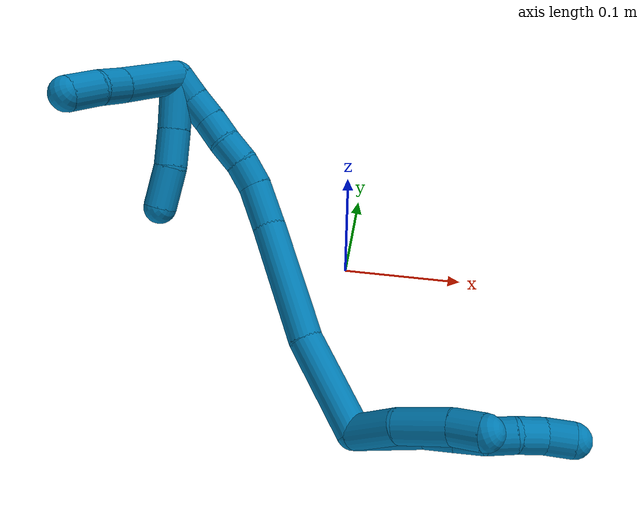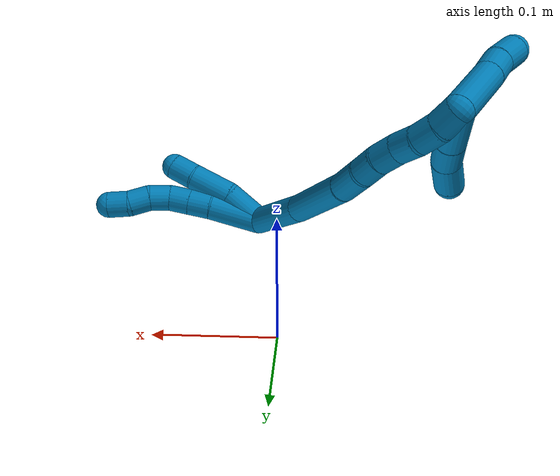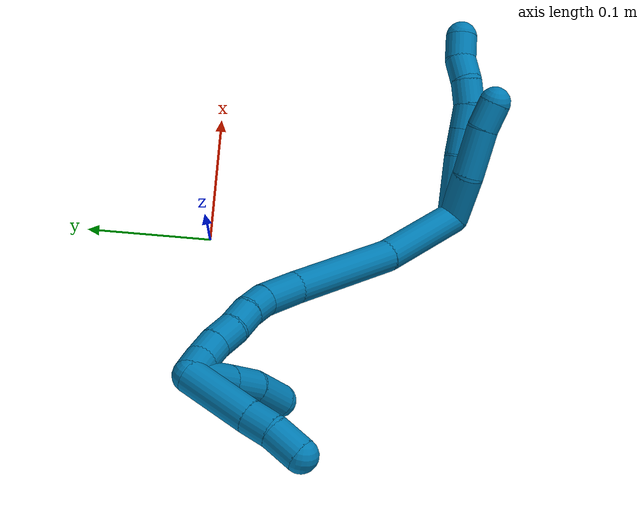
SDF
<sdf version="1.7">
 <world name="default">
  <model name="9">
   <static>0</static>
   <link name="9">
    <collision name="collision-cylinder-e_1_2_8">
     <pose>0.009639 0.001444 0.022558 -0.063905 0.403093 -0.013061</pose>
     <geometry><cylinder><radius>0.0125</radius><length>0.049147</length></cylinder></geometry>
     <surface>
      <friction><ode><mu>1.16</mu><mu2>1.16</mu2><slip1>0</slip1><slip2>0</slip2></ode></friction>
      <contact><ode><kp>1e+06</kp><kd>1</kd><max_vel>0</max_vel><min_depth>0.001</min_depth></ode></contact>
     </surface>
    </collision>
    <visual name="visual-cylinder-e_1_2_8">
     <pose>0.009639 0.001444 0.022558 -0.063905 0.403093 -0.013061</pose>
     <geometry><cylinder><radius>0.0125</radius><length>0.049147</length></cylinder></geometry>
     <material><ambient>0 0.490196 0.709804 1</ambient></material>
    </visual>
    <collision name="collision-cylinder-e_2_8_9">
     <pose>0.024267 0.002597 0.054194 0.031956 0.502179 0.008197</pose>
     <geometry><cylinder><radius>0.0125</radius><length>0.020724</length></cylinder></geometry>
     <surface>
      <friction><ode><mu>1.16</mu><mu2>1.16</mu2><slip1>0</slip1><slip2>0</slip2></ode></friction>
      <contact><ode><kp>1e+06</kp><kd>1</kd><max_vel>0</max_vel><min_depth>0.001</min_depth></ode></contact>
     </surface>
    </collision>
    <visual name="visual-cylinder-e_2_8_9">
     <pose>0.024267 0.002597 0.054194 0.031956 0.502179 0.008197</pose>
     <geometry><cylinder><radius>0.0125</radius><length>0.020724</length></cylinder></geometry>
     <material><ambient>0 0.490196 0.709804 1</ambient></material>
    </visual>
    <collision name="collision-cylinder-e_3_9_10">
     <pose>0.034044 0.002079 0.07205 0.025905 0.499361 0.006606</pose>
     <geometry><cylinder><radius>0.0125</radius><length>0.020005</length></cylinder></geometry>
     <surface>
      <friction><ode><mu>1.16</mu><mu2>1.16</mu2><slip1>0</slip1><slip2>0</slip2></ode></friction>
      <contact><ode><kp>1e+06</kp><kd>1</kd><max_vel>0</max_vel><min_depth>0.001</min_depth></ode></contact>
     </surface>
    </collision>
    <visual name="visual-cylinder-e_3_9_10">
     <pose>0.034044 0.002079 0.07205 0.025905 0.499361 0.006606</pose>
     <geometry><cylinder><radius>0.0125</radius><length>0.020005</length></cylinder></geometry>
     <material><ambient>0 0.490196 0.709804 1</ambient></material>
    </visual>
    <collision name="collision-cylinder-e_4_10_11">
     <pose>0.044795 0.004277 0.088561 -0.303929 0.634231 -0.100437</pose>
     <geometry><cylinder><radius>0.0125</radius><length>0.020121</length></cylinder></geometry>
     <surface>
      <friction><ode><mu>1.16</mu><mu2>1.16</mu2><slip1>0</slip1><slip2>0</slip2></ode></friction>
      <contact><ode><kp>1e+06</kp><kd>1</kd><max_vel>0</max_vel><min_depth>0.001</min_depth></ode></contact>
     </surface>
    </collision>
    <visual name="visual-cylinder-e_4_10_11">
     <pose>0.044795 0.004277 0.088561 -0.303929 0.634231 -0.100437</pose>
     <geometry><cylinder><radius>0.0125</radius><length>0.020121</length></cylinder></geometry>
     <material><ambient>0 0.490196 0.709804 1</ambient></material>
    </visual>
    <collision name="collision-cylinder-e_5_11_12">
     <pose>0.058427 0.009759 0.101935 -0.496466 0.874187 -0.235753</pose>
     <geometry><cylinder><radius>0.0125</radius><length>0.02</length></cylinder></geometry>
     <surface>
      <friction><ode><mu>1.16</mu><mu2>1.16</mu2><slip1>0</slip1><slip2>0</slip2></ode></friction>
      <contact><ode><kp>1e+06</kp><kd>1</kd><max_vel>0</max_vel><min_depth>0.001</min_depth></ode></contact>
     </surface>
    </collision>
    <visual name="visual-cylinder-e_5_11_12">
     <pose>0.058427 0.009759 0.101935 -0.496466 0.874187 -0.235753</pose>
     <geometry><cylinder><radius>0.0125</radius><length>0.02</length></cylinder></geometry>
     <material><ambient>0 0.490196 0.709804 1</ambient></material>
    </visual>
    <collision name="collision-cylinder-e_6_12_6">
     <pose>0.072924 0.013534 0.11485 -0.098515 0.751365 -0.038882</pose>
     <geometry><cylinder><radius>0.0125</radius><length>0.020002</length></cylinder></geometry>
     <surface>
      <friction><ode><mu>1.16</mu><mu2>1.16</mu2><slip1>0</slip1><slip2>0</slip2></ode></friction>
      <contact><ode><kp>1e+06</kp><kd>1</kd><max_vel>0</max_vel><min_depth>0.001</min_depth></ode></contact>
     </surface>
    </collision>
    <visual name="visual-cylinder-e_6_12_6">
     <pose>0.072924 0.013534 0.11485 -0.098515 0.751365 -0.038882</pose>
     <geometry><cylinder><radius>0.0125</radius><length>0.020002</length></cylinder></geometry>
     <material><ambient>0 0.490196 0.709804 1</ambient></material>
    </visual>
    <collision name="collision-cylinder-e_1_2_13">
     <pose>0.000162 -0.001787 0.019089 0.09335 0.00843 0.000394</pose>
     <geometry><cylinder><radius>0.0125</radius><length>0.038346</length></cylinder></geometry>
     <surface>
      <friction><ode><mu>1.16</mu><mu2>1.16</mu2><slip1>0</slip1><slip2>0</slip2></ode></friction>
      <contact><ode><kp>1e+06</kp><kd>1</kd><max_vel>0</max_vel><min_depth>0.001</min_depth></ode></contact>
     </surface>
    </collision>
    <visual name="visual-cylinder-e_1_2_13">
     <pose>0.000162 -0.001787 0.019089 0.09335 0.00843 0.000394</pose>
     <geometry><cylinder><radius>0.0125</radius><length>0.038346</length></cylinder></geometry>
     <material><ambient>0 0.490196 0.709804 1</ambient></material>
    </visual>
    <collision name="collision-cylinder-e_2_13_14">
     <pose>0.005028 -0.00543 0.057057 0.097962 0.243104 0.011976</pose>
     <geometry><cylinder><radius>0.0125</radius><length>0.039091</length></cylinder></geometry>
     <surface>
      <friction><ode><mu>1.16</mu><mu2>1.16</mu2><slip1>0</slip1><slip2>0</slip2></ode></friction>
      <contact><ode><kp>1e+06</kp><kd>1</kd><max_vel>0</max_vel><min_depth>0.001</min_depth></ode></contact>
     </surface>
    </collision>
    <visual name="visual-cylinder-e_2_13_14">
     <pose>0.005028 -0.00543 0.057057 0.097962 0.243104 0.011976</pose>
     <geometry><cylinder><radius>0.0125</radius><length>0.039091</length></cylinder></geometry>
     <material><ambient>0 0.490196 0.709804 1</ambient></material>
    </visual>
    <collision name="collision-cylinder-e_3_14_5">
     <pose>0.012694 -0.01005 0.086466 0.256758 0.265529 0.034476</pose>
     <geometry><cylinder><radius>0.0125</radius><length>0.022564</length></cylinder></geometry>
     <surface>
      <friction><ode><mu>1.16</mu><mu2>1.16</mu2><slip1>0</slip1><slip2>0</slip2></ode></friction>
      <contact><ode><kp>1e+06</kp><kd>1</kd><max_vel>0</max_vel><min_depth>0.001</min_depth></ode></contact>
     </surface>
    </collision>
    <visual name="visual-cylinder-e_3_14_5">
     <pose>0.012694 -0.01005 0.086466 0.256758 0.265529 0.034476</pose>
     <geometry><cylinder><radius>0.0125</radius><length>0.022564</length></cylinder></geometry>
     <material><ambient>0 0.490196 0.709804 1</ambient></material>
    </visual>
    <collision name="collision-cylinder-e_1_2_15">
     <pose>-0.024384 0.026046 -0.009161 -1.90902 -0.723429 0.981215</pose>
     <geometry><cylinder><radius>0.0125</radius><length>0.073671</length></cylinder></geometry>
     <surface>
      <friction><ode><mu>1.16</mu><mu2>1.16</mu2><slip1>0</slip1><slip2>0</slip2></ode></friction>
      <contact><ode><kp>1e+06</kp><kd>1</kd><max_vel>0</max_vel><min_depth>0.001</min_depth></ode></contact>
     </surface>
    </collision>
    <visual name="visual-cylinder-e_1_2_15">
     <pose>-0.024384 0.026046 -0.009161 -1.90902 -0.723429 0.981215</pose>
     <geometry><cylinder><radius>0.0125</radius><length>0.073671</length></cylinder></geometry>
     <material><ambient>0 0.490196 0.709804 1</ambient></material>
    </visual>
    <collision name="collision-cylinder-e_2_15_16">
     <pose>-0.076321 0.087482 -0.023586 -1.71845 -0.65622 0.752017</pose>
     <geometry><cylinder><radius>0.0125</radius><length>0.09032</length></cylinder></geometry>
     <surface>
      <friction><ode><mu>1.16</mu><mu2>1.16</mu2><slip1>0</slip1><slip2>0</slip2></ode></friction>
      <contact><ode><kp>1e+06</kp><kd>1</kd><max_vel>0</max_vel><min_depth>0.001</min_depth></ode></contact>
     </surface>
    </collision>
    <visual name="visual-cylinder-e_2_15_16">
     <pose>-0.076321 0.087482 -0.023586 -1.71845 -0.65622 0.752017</pose>
     <geometry><cylinder><radius>0.0125</radius><length>0.09032</length></cylinder></geometry>
     <material><ambient>0 0.490196 0.709804 1</ambient></material>
    </visual>
    <collision name="collision-cylinder-e_3_16_17">
     <pose>-0.11571 0.134725 -0.029678 -1.64054 -0.783541 0.83402</pose>
     <geometry><cylinder><radius>0.0125</radius><length>0.03354</length></cylinder></geometry>
     <surface>
      <friction><ode><mu>1.16</mu><mu2>1.16</mu2><slip1>0</slip1><slip2>0</slip2></ode></friction>
      <contact><ode><kp>1e+06</kp><kd>1</kd><max_vel>0</max_vel><min_depth>0.001</min_depth></ode></contact>
     </surface>
    </collision>
    <visual name="visual-cylinder-e_3_16_17">
     <pose>-0.11571 0.134725 -0.029678 -1.64054 -0.783541 0.83402</pose>
     <geometry><cylinder><radius>0.0125</radius><length>0.03354</length></cylinder></geometry>
     <material><ambient>0 0.490196 0.709804 1</ambient></material>
    </visual>
    <collision name="collision-cylinder-e_4_17_18">
     <pose>-0.136288 0.151974 -0.031399 -1.73471 -1.01152 1.15685</pose>
     <geometry><cylinder><radius>0.0125</radius><length>0.020626</length></cylinder></geometry>
     <surface>
      <friction><ode><mu>1.16</mu><mu2>1.16</mu2><slip1>0</slip1><slip2>0</slip2></ode></friction>
      <contact><ode><kp>1e+06</kp><kd>1</kd><max_vel>0</max_vel><min_depth>0.001</min_depth></ode></contact>
     </surface>
    </collision>
    <visual name="visual-cylinder-e_4_17_18">
     <pose>-0.136288 0.151974 -0.031399 -1.73471 -1.01152 1.15685</pose>
     <geometry><cylinder><radius>0.0125</radius><length>0.020626</length></cylinder></geometry>
     <material><ambient>0 0.490196 0.709804 1</ambient></material>
    </visual>
    <collision name="collision-cylinder-e_5_18_19">
     <pose>-0.15389 0.161848 -0.034702 -2.06483 -1.05 1.54018</pose>
     <geometry><cylinder><radius>0.0125</radius><length>0.020429</length></cylinder></geometry>
     <surface>
      <friction><ode><mu>1.16</mu><mu2>1.16</mu2><slip1>0</slip1><slip2>0</slip2></ode></friction>
      <contact><ode><kp>1e+06</kp><kd>1</kd><max_vel>0</max_vel><min_depth>0.001</min_depth></ode></contact>
     </surface>
    </collision>
    <visual name="visual-cylinder-e_5_18_19">
     <pose>-0.15389 0.161848 -0.034702 -2.06483 -1.05 1.54018</pose>
     <geometry><cylinder><radius>0.0125</radius><length>0.020429</length></cylinder></geometry>
     <material><ambient>0 0.490196 0.709804 1</ambient></material>
    </visual>
    <collision name="collision-cylinder-e_6_19_20">
     <pose>-0.17067 0.172348 -0.039964 -2.01283 -0.871121 1.26779</pose>
     <geometry><cylinder><radius>0.0125</radius><length>0.020704</length></cylinder></geometry>
     <surface>
      <friction><ode><mu>1.16</mu><mu2>1.16</mu2><slip1>0</slip1><slip2>0</slip2></ode></friction>
      <contact><ode><kp>1e+06</kp><kd>1</kd><max_vel>0</max_vel><min_depth>0.001</min_depth></ode></contact>
     </surface>
    </collision>
    <visual name="visual-cylinder-e_6_19_20">
     <pose>-0.17067 0.172348 -0.039964 -2.01283 -0.871121 1.26779</pose>
     <geometry><cylinder><radius>0.0125</radius><length>0.020704</length></cylinder></geometry>
     <material><ambient>0 0.490196 0.709804 1</ambient></material>
    </visual>
    <collision name="collision-cylinder-e_7_20_21">
     <pose>-0.187696 0.182715 -0.044985 -2.03422 -1.08113 1.54126</pose>
     <geometry><cylinder><radius>0.0125</radius><length>0.020638</length></cylinder></geometry>
     <surface>
      <friction><ode><mu>1.16</mu><mu2>1.16</mu2><slip1>0</slip1><slip2>0</slip2></ode></friction>
      <contact><ode><kp>1e+06</kp><kd>1</kd><max_vel>0</max_vel><min_depth>0.001</min_depth></ode></contact>
     </surface>
    </collision>
    <visual name="visual-cylinder-e_7_20_21">
     <pose>-0.187696 0.182715 -0.044985 -2.03422 -1.08113 1.54126</pose>
     <geometry><cylinder><radius>0.0125</radius><length>0.020638</length></cylinder></geometry>
     <material><ambient>0 0.490196 0.709804 1</ambient></material>
    </visual>
    <collision name="collision-cylinder-e_8_21_1">
     <pose>-0.206288 0.190277 -0.047776 -1.76143 -1.23791 1.42391</pose>
     <geometry><cylinder><radius>0.0125</radius><length>0.020071</length></cylinder></geometry>
     <surface>
      <friction><ode><mu>1.16</mu><mu2>1.16</mu2><slip1>0</slip1><slip2>0</slip2></ode></friction>
      <contact><ode><kp>1e+06</kp><kd>1</kd><max_vel>0</max_vel><min_depth>0.001</min_depth></ode></contact>
     </surface>
    </collision>
    <visual name="visual-cylinder-e_8_21_1">
     <pose>-0.206288 0.190277 -0.047776 -1.76143 -1.23791 1.42391</pose>
     <geometry><cylinder><radius>0.0125</radius><length>0.020071</length></cylinder></geometry>
     <material><ambient>0 0.490196 0.709804 1</ambient></material>
    </visual>
    <collision name="collision-cylinder-e_1_1_22">
     <pose>-0.231248 0.17155 -0.051204 1.698 -0.610341 -0.687326</pose>
     <geometry><cylinder><radius>0.0125</radius><length>0.054001</length></cylinder></geometry>
     <surface>
      <friction><ode><mu>1.16</mu><mu2>1.16</mu2><slip1>0</slip1><slip2>0</slip2></ode></friction>
      <contact><ode><kp>1e+06</kp><kd>1</kd><max_vel>0</max_vel><min_depth>0.001</min_depth></ode></contact>
     </surface>
    </collision>
    <visual name="visual-cylinder-e_1_1_22">
     <pose>-0.231248 0.17155 -0.051204 1.698 -0.610341 -0.687326</pose>
     <geometry><cylinder><radius>0.0125</radius><length>0.054001</length></cylinder></geometry>
     <material><ambient>0 0.490196 0.709804 1</ambient></material>
    </visual>
    <collision name="collision-cylinder-e_2_22_23">
     <pose>-0.252877 0.141148 -0.054362 1.61234 -0.628722 -0.653575</pose>
     <geometry><cylinder><radius>0.0125</radius><length>0.020927</length></cylinder></geometry>
     <surface>
      <friction><ode><mu>1.16</mu><mu2>1.16</mu2><slip1>0</slip1><slip2>0</slip2></ode></friction>
      <contact><ode><kp>1e+06</kp><kd>1</kd><max_vel>0</max_vel><min_depth>0.001</min_depth></ode></contact>
     </surface>
    </collision>
    <visual name="visual-cylinder-e_2_22_23">
     <pose>-0.252877 0.141148 -0.054362 1.61234 -0.628722 -0.653575</pose>
     <geometry><cylinder><radius>0.0125</radius><length>0.020927</length></cylinder></geometry>
     <material><ambient>0 0.490196 0.709804 1</ambient></material>
    </visual>
    <collision name="collision-cylinder-e_3_23_4">
     <pose>-0.266188 0.122825 -0.057638 1.8589 -0.607714 -0.795212</pose>
     <geometry><cylinder><radius>0.0125</radius><length>0.025072</length></cylinder></geometry>
     <surface>
      <friction><ode><mu>1.16</mu><mu2>1.16</mu2><slip1>0</slip1><slip2>0</slip2></ode></friction>
      <contact><ode><kp>1e+06</kp><kd>1</kd><max_vel>0</max_vel><min_depth>0.001</min_depth></ode></contact>
     </surface>
    </collision>
    <visual name="visual-cylinder-e_3_23_4">
     <pose>-0.266188 0.122825 -0.057638 1.8589 -0.607714 -0.795212</pose>
     <geometry><cylinder><radius>0.0125</radius><length>0.025072</length></cylinder></geometry>
     <material><ambient>0 0.490196 0.709804 1</ambient></material>
    </visual>
    <collision name="collision-cylinder-e_1_1_24">
     <pose>-0.203845 0.179312 -0.056049 2.06551 0.637113 1.00971</pose>
     <geometry><cylinder><radius>0.0125</radius><length>0.040102</length></cylinder></geometry>
     <surface>
      <friction><ode><mu>1.16</mu><mu2>1.16</mu2><slip1>0</slip1><slip2>0</slip2></ode></friction>
      <contact><ode><kp>1e+06</kp><kd>1</kd><max_vel>0</max_vel><min_depth>0.001</min_depth></ode></contact>
     </surface>
    </collision>
    <visual name="visual-cylinder-e_1_1_24">
     <pose>-0.203845 0.179312 -0.056049 2.06551 0.637113 1.00971</pose>
     <geometry><cylinder><radius>0.0125</radius><length>0.040102</length></cylinder></geometry>
     <material><ambient>0 0.490196 0.709804 1</ambient></material>
    </visual>
    <collision name="collision-cylinder-e_2_24_25">
     <pose>-0.184226 0.154781 -0.06905 2.04792 0.583608 0.916752</pose>
     <geometry><cylinder><radius>0.0125</radius><length>0.027914</length></cylinder></geometry>
     <surface>
      <friction><ode><mu>1.16</mu><mu2>1.16</mu2><slip1>0</slip1><slip2>0</slip2></ode></friction>
      <contact><ode><kp>1e+06</kp><kd>1</kd><max_vel>0</max_vel><min_depth>0.001</min_depth></ode></contact>
     </surface>
    </collision>
    <visual name="visual-cylinder-e_2_24_25">
     <pose>-0.184226 0.154781 -0.06905 2.04792 0.583608 0.916752</pose>
     <geometry><cylinder><radius>0.0125</radius><length>0.027914</length></cylinder></geometry>
     <material><ambient>0 0.490196 0.709804 1</ambient></material>
    </visual>
    <collision name="collision-cylinder-e_3_25_3">
     <pose>-0.168979 0.133511 -0.083306 2.25484 0.492089 0.972845</pose>
     <geometry><cylinder><radius>0.0125</radius><length>0.031984</length></cylinder></geometry>
     <surface>
      <friction><ode><mu>1.16</mu><mu2>1.16</mu2><slip1>0</slip1><slip2>0</slip2></ode></friction>
      <contact><ode><kp>1e+06</kp><kd>1</kd><max_vel>0</max_vel><min_depth>0.001</min_depth></ode></contact>
     </surface>
    </collision>
    <visual name="visual-cylinder-e_3_25_3">
     <pose>-0.168979 0.133511 -0.083306 2.25484 0.492089 0.972845</pose>
     <geometry><cylinder><radius>0.0125</radius><length>0.031984</length></cylinder></geometry>
     <material><ambient>0 0.490196 0.709804 1</ambient></material>
    </visual>
    <collision name="collision-sphere-3">
     <pose>-0.161424 0.122588 -0.092212 0 -0 0</pose>
     <geometry><sphere><radius>0.0125</radius></sphere></geometry>
     <surface>
      <friction><ode><mu>1.16</mu><mu2>1.16</mu2><slip1>0</slip1><slip2>0</slip2></ode></friction>
      <contact><ode><kp>1e+06</kp><kd>1</kd><max_vel>0</max_vel><min_depth>0.001</min_depth></ode></contact>
     </surface>
    </collision>
    <visual name="visual-sphere-3">
     <pose>-0.161424 0.122588 -0.092212 0 -0 0</pose>
     <geometry><sphere><radius>0.0125</radius></sphere></geometry>
     <material><ambient>0 0.490196 0.709804 1</ambient></material>
    </visual>
    <collision name="collision-sphere-25">
     <pose>-0.176535 0.144435 -0.074399 0 -0 0</pose>
     <geometry><sphere><radius>0.0125</radius></sphere></geometry>
     <surface>
      <friction><ode><mu>1.16</mu><mu2>1.16</mu2><slip1>0</slip1><slip2>0</slip2></ode></friction>
      <contact><ode><kp>1e+06</kp><kd>1</kd><max_vel>0</max_vel><min_depth>0.001</min_depth></ode></contact>
     </surface>
    </collision>
    <visual name="visual-sphere-25">
     <pose>-0.176535 0.144435 -0.074399 0 -0 0</pose>
     <geometry><sphere><radius>0.0125</radius></sphere></geometry>
     <material><ambient>0 0.490196 0.709804 1</ambient></material>
    </visual>
    <collision name="collision-sphere-24">
     <pose>-0.191917 0.165127 -0.063702 0 -0 0</pose>
     <geometry><sphere><radius>0.0125</radius></sphere></geometry>
     <surface>
      <friction><ode><mu>1.16</mu><mu2>1.16</mu2><slip1>0</slip1><slip2>0</slip2></ode></friction>
      <contact><ode><kp>1e+06</kp><kd>1</kd><max_vel>0</max_vel><min_depth>0.001</min_depth></ode></contact>
     </surface>
    </collision>
    <visual name="visual-sphere-24">
     <pose>-0.191917 0.165127 -0.063702 0 -0 0</pose>
     <geometry><sphere><radius>0.0125</radius></sphere></geometry>
     <material><ambient>0 0.490196 0.709804 1</ambient></material>
    </visual>
    <collision name="collision-sphere-4">
     <pose>-0.273346 0.112958 -0.060562 0 -0 0</pose>
     <geometry><sphere><radius>0.0125</radius></sphere></geometry>
     <surface>
      <friction><ode><mu>1.16</mu><mu2>1.16</mu2><slip1>0</slip1><slip2>0</slip2></ode></friction>
      <contact><ode><kp>1e+06</kp><kd>1</kd><max_vel>0</max_vel><min_depth>0.001</min_depth></ode></contact>
     </surface>
    </collision>
    <visual name="visual-sphere-4">
     <pose>-0.273346 0.112958 -0.060562 0 -0 0</pose>
     <geometry><sphere><radius>0.0125</radius></sphere></geometry>
     <material><ambient>0 0.490196 0.709804 1</ambient></material>
    </visual>
    <collision name="collision-sphere-23">
     <pose>-0.25903 0.132692 -0.054714 0 -0 0</pose>
     <geometry><sphere><radius>0.0125</radius></sphere></geometry>
     <surface>
      <friction><ode><mu>1.16</mu><mu2>1.16</mu2><slip1>0</slip1><slip2>0</slip2></ode></friction>
      <contact><ode><kp>1e+06</kp><kd>1</kd><max_vel>0</max_vel><min_depth>0.001</min_depth></ode></contact>
     </surface>
    </collision>
    <visual name="visual-sphere-23">
     <pose>-0.25903 0.132692 -0.054714 0 -0 0</pose>
     <geometry><sphere><radius>0.0125</radius></sphere></geometry>
     <material><ambient>0 0.490196 0.709804 1</ambient></material>
    </visual>
    <collision name="collision-sphere-22">
     <pose>-0.246723 0.149603 -0.054011 0 -0 0</pose>
     <geometry><sphere><radius>0.0125</radius></sphere></geometry>
     <surface>
      <friction><ode><mu>1.16</mu><mu2>1.16</mu2><slip1>0</slip1><slip2>0</slip2></ode></friction>
      <contact><ode><kp>1e+06</kp><kd>1</kd><max_vel>0</max_vel><min_depth>0.001</min_depth></ode></contact>
     </surface>
    </collision>
    <visual name="visual-sphere-22">
     <pose>-0.246723 0.149603 -0.054011 0 -0 0</pose>
     <geometry><sphere><radius>0.0125</radius></sphere></geometry>
     <material><ambient>0 0.490196 0.709804 1</ambient></material>
    </visual>
    <collision name="collision-sphere-1">
     <pose>-0.215772 0.193497 -0.048397 0 -0 0</pose>
     <geometry><sphere><radius>0.0125</radius></sphere></geometry>
     <surface>
      <friction><ode><mu>1.16</mu><mu2>1.16</mu2><slip1>0</slip1><slip2>0</slip2></ode></friction>
      <contact><ode><kp>1e+06</kp><kd>1</kd><max_vel>0</max_vel><min_depth>0.001</min_depth></ode></contact>
     </surface>
    </collision>
    <visual name="visual-sphere-1">
     <pose>-0.215772 0.193497 -0.048397 0 -0 0</pose>
     <geometry><sphere><radius>0.0125</radius></sphere></geometry>
     <material><ambient>0 0.490196 0.709804 1</ambient></material>
    </visual>
    <collision name="collision-sphere-21">
     <pose>-0.196803 0.187057 -0.047155 0 -0 0</pose>
     <geometry><sphere><radius>0.0125</radius></sphere></geometry>
     <surface>
      <friction><ode><mu>1.16</mu><mu2>1.16</mu2><slip1>0</slip1><slip2>0</slip2></ode></friction>
      <contact><ode><kp>1e+06</kp><kd>1</kd><max_vel>0</max_vel><min_depth>0.001</min_depth></ode></contact>
     </surface>
    </collision>
    <visual name="visual-sphere-21">
     <pose>-0.196803 0.187057 -0.047155 0 -0 0</pose>
     <geometry><sphere><radius>0.0125</radius></sphere></geometry>
     <material><ambient>0 0.490196 0.709804 1</ambient></material>
    </visual>
    <collision name="collision-sphere-12">
     <pose>0.066097 0.012815 0.107577 0 -0 0</pose>
     <geometry><sphere><radius>0.0125</radius></sphere></geometry>
     <surface>
      <friction><ode><mu>1.16</mu><mu2>1.16</mu2><slip1>0</slip1><slip2>0</slip2></ode></friction>
      <contact><ode><kp>1e+06</kp><kd>1</kd><max_vel>0</max_vel><min_depth>0.001</min_depth></ode></contact>
     </surface>
    </collision>
    <visual name="visual-sphere-12">
     <pose>0.066097 0.012815 0.107577 0 -0 0</pose>
     <geometry><sphere><radius>0.0125</radius></sphere></geometry>
     <material><ambient>0 0.490196 0.709804 1</ambient></material>
    </visual>
    <collision name="collision-sphere-11">
     <pose>0.050757 0.006702 0.096294 0 -0 0</pose>
     <geometry><sphere><radius>0.0125</radius></sphere></geometry>
     <surface>
      <friction><ode><mu>1.16</mu><mu2>1.16</mu2><slip1>0</slip1><slip2>0</slip2></ode></friction>
      <contact><ode><kp>1e+06</kp><kd>1</kd><max_vel>0</max_vel><min_depth>0.001</min_depth></ode></contact>
     </surface>
    </collision>
    <visual name="visual-sphere-11">
     <pose>0.050757 0.006702 0.096294 0 -0 0</pose>
     <geometry><sphere><radius>0.0125</radius></sphere></geometry>
     <material><ambient>0 0.490196 0.709804 1</ambient></material>
    </visual>
    <collision name="collision-sphere-10">
     <pose>0.038834 0.001852 0.080828 0 -0 0</pose>
     <geometry><sphere><radius>0.0125</radius></sphere></geometry>
     <surface>
      <friction><ode><mu>1.16</mu><mu2>1.16</mu2><slip1>0</slip1><slip2>0</slip2></ode></friction>
      <contact><ode><kp>1e+06</kp><kd>1</kd><max_vel>0</max_vel><min_depth>0.001</min_depth></ode></contact>
     </surface>
    </collision>
    <visual name="visual-sphere-10">
     <pose>0.038834 0.001852 0.080828 0 -0 0</pose>
     <geometry><sphere><radius>0.0125</radius></sphere></geometry>
     <material><ambient>0 0.490196 0.709804 1</ambient></material>
    </visual>
    <collision name="collision-sphere-9">
     <pose>0.029254 0.002307 0.063272 0 -0 0</pose>
     <geometry><sphere><radius>0.0125</radius></sphere></geometry>
     <surface>
      <friction><ode><mu>1.16</mu><mu2>1.16</mu2><slip1>0</slip1><slip2>0</slip2></ode></friction>
      <contact><ode><kp>1e+06</kp><kd>1</kd><max_vel>0</max_vel><min_depth>0.001</min_depth></ode></contact>
     </surface>
    </collision>
    <visual name="visual-sphere-9">
     <pose>0.029254 0.002307 0.063272 0 -0 0</pose>
     <geometry><sphere><radius>0.0125</radius></sphere></geometry>
     <material><ambient>0 0.490196 0.709804 1</ambient></material>
    </visual>
    <collision name="collision-sphere-2">
     <geometry><sphere><radius>0.0125</radius></sphere></geometry>
     <surface>
      <friction><ode><mu>1.16</mu><mu2>1.16</mu2><slip1>0</slip1><slip2>0</slip2></ode></friction>
      <contact><ode><kp>1e+06</kp><kd>1</kd><max_vel>0</max_vel><min_depth>0.001</min_depth></ode></contact>
     </surface>
    </collision>
    <visual name="visual-sphere-2">
     <geometry><sphere><radius>0.0125</radius></sphere></geometry>
     <material><ambient>0 0.490196 0.709804 1</ambient></material>
    </visual>
    <collision name="collision-sphere-19">
     <pose>-0.16275 0.166323 -0.037112 0 -0 0</pose>
     <geometry><sphere><radius>0.0125</radius></sphere></geometry>
     <surface>
      <friction><ode><mu>1.16</mu><mu2>1.16</mu2><slip1>0</slip1><slip2>0</slip2></ode></friction>
      <contact><ode><kp>1e+06</kp><kd>1</kd><max_vel>0</max_vel><min_depth>0.001</min_depth></ode></contact>
     </surface>
    </collision>
    <visual name="visual-sphere-19">
     <pose>-0.16275 0.166323 -0.037112 0 -0 0</pose>
     <geometry><sphere><radius>0.0125</radius></sphere></geometry>
     <material><ambient>0 0.490196 0.709804 1</ambient></material>
    </visual>
    <collision name="collision-sphere-8">
     <pose>0.019279 0.002887 0.045116 0 -0 0</pose>
     <geometry><sphere><radius>0.0125</radius></sphere></geometry>
     <surface>
      <friction><ode><mu>1.16</mu><mu2>1.16</mu2><slip1>0</slip1><slip2>0</slip2></ode></friction>
      <contact><ode><kp>1e+06</kp><kd>1</kd><max_vel>0</max_vel><min_depth>0.001</min_depth></ode></contact>
     </surface>
    </collision>
    <visual name="visual-sphere-8">
     <pose>0.019279 0.002887 0.045116 0 -0 0</pose>
     <geometry><sphere><radius>0.0125</radius></sphere></geometry>
     <material><ambient>0 0.490196 0.709804 1</ambient></material>
    </visual>
    <collision name="collision-sphere-6">
     <pose>0.079752 0.014252 0.122123 0 -0 0</pose>
     <geometry><sphere><radius>0.0125</radius></sphere></geometry>
     <surface>
      <friction><ode><mu>1.16</mu><mu2>1.16</mu2><slip1>0</slip1><slip2>0</slip2></ode></friction>
      <contact><ode><kp>1e+06</kp><kd>1</kd><max_vel>0</max_vel><min_depth>0.001</min_depth></ode></contact>
     </surface>
    </collision>
    <visual name="visual-sphere-6">
     <pose>0.079752 0.014252 0.122123 0 -0 0</pose>
     <geometry><sphere><radius>0.0125</radius></sphere></geometry>
     <material><ambient>0 0.490196 0.709804 1</ambient></material>
    </visual>
    <collision name="collision-sphere-13">
     <pose>0.000323 -0.003574 0.038177 0 -0 0</pose>
     <geometry><sphere><radius>0.0125</radius></sphere></geometry>
     <surface>
      <friction><ode><mu>1.16</mu><mu2>1.16</mu2><slip1>0</slip1><slip2>0</slip2></ode></friction>
      <contact><ode><kp>1e+06</kp><kd>1</kd><max_vel>0</max_vel><min_depth>0.001</min_depth></ode></contact>
     </surface>
    </collision>
    <visual name="visual-sphere-13">
     <pose>0.000323 -0.003574 0.038177 0 -0 0</pose>
     <geometry><sphere><radius>0.0125</radius></sphere></geometry>
     <material><ambient>0 0.490196 0.709804 1</ambient></material>
    </visual>
    <collision name="collision-sphere-14">
     <pose>0.009733 -0.007285 0.075937 0 -0 0</pose>
     <geometry><sphere><radius>0.0125</radius></sphere></geometry>
     <surface>
      <friction><ode><mu>1.16</mu><mu2>1.16</mu2><slip1>0</slip1><slip2>0</slip2></ode></friction>
      <contact><ode><kp>1e+06</kp><kd>1</kd><max_vel>0</max_vel><min_depth>0.001</min_depth></ode></contact>
     </surface>
    </collision>
    <visual name="visual-sphere-14">
     <pose>0.009733 -0.007285 0.075937 0 -0 0</pose>
     <geometry><sphere><radius>0.0125</radius></sphere></geometry>
     <material><ambient>0 0.490196 0.709804 1</ambient></material>
    </visual>
    <collision name="collision-sphere-5">
     <pose>0.015654 -0.012814 0.096996 0 -0 0</pose>
     <geometry><sphere><radius>0.0125</radius></sphere></geometry>
     <surface>
      <friction><ode><mu>1.16</mu><mu2>1.16</mu2><slip1>0</slip1><slip2>0</slip2></ode></friction>
      <contact><ode><kp>1e+06</kp><kd>1</kd><max_vel>0</max_vel><min_depth>0.001</min_depth></ode></contact>
     </surface>
    </collision>
    <visual name="visual-sphere-5">
     <pose>0.015654 -0.012814 0.096996 0 -0 0</pose>
     <geometry><sphere><radius>0.0125</radius></sphere></geometry>
     <material><ambient>0 0.490196 0.709804 1</ambient></material>
    </visual>
    <collision name="collision-sphere-15">
     <pose>-0.048767 0.052091 -0.018322 0 -0 0</pose>
     <geometry><sphere><radius>0.0125</radius></sphere></geometry>
     <surface>
      <friction><ode><mu>1.16</mu><mu2>1.16</mu2><slip1>0</slip1><slip2>0</slip2></ode></friction>
      <contact><ode><kp>1e+06</kp><kd>1</kd><max_vel>0</max_vel><min_depth>0.001</min_depth></ode></contact>
     </surface>
    </collision>
    <visual name="visual-sphere-15">
     <pose>-0.048767 0.052091 -0.018322 0 -0 0</pose>
     <geometry><sphere><radius>0.0125</radius></sphere></geometry>
     <material><ambient>0 0.490196 0.709804 1</ambient></material>
    </visual>
    <collision name="collision-sphere-16">
     <pose>-0.103874 0.122874 -0.02885 0 -0 0</pose>
     <geometry><sphere><radius>0.0125</radius></sphere></geometry>
     <surface>
      <friction><ode><mu>1.16</mu><mu2>1.16</mu2><slip1>0</slip1><slip2>0</slip2></ode></friction>
      <contact><ode><kp>1e+06</kp><kd>1</kd><max_vel>0</max_vel><min_depth>0.001</min_depth></ode></contact>
     </surface>
    </collision>
    <visual name="visual-sphere-16">
     <pose>-0.103874 0.122874 -0.02885 0 -0 0</pose>
     <geometry><sphere><radius>0.0125</radius></sphere></geometry>
     <material><ambient>0 0.490196 0.709804 1</ambient></material>
    </visual>
    <collision name="collision-sphere-17">
     <pose>-0.127546 0.146576 -0.030506 0 -0 0</pose>
     <geometry><sphere><radius>0.0125</radius></sphere></geometry>
     <surface>
      <friction><ode><mu>1.16</mu><mu2>1.16</mu2><slip1>0</slip1><slip2>0</slip2></ode></friction>
      <contact><ode><kp>1e+06</kp><kd>1</kd><max_vel>0</max_vel><min_depth>0.001</min_depth></ode></contact>
     </surface>
    </collision>
    <visual name="visual-sphere-17">
     <pose>-0.127546 0.146576 -0.030506 0 -0 0</pose>
     <geometry><sphere><radius>0.0125</radius></sphere></geometry>
     <material><ambient>0 0.490196 0.709804 1</ambient></material>
    </visual>
    <collision name="collision-sphere-18">
     <pose>-0.14503 0.157373 -0.032292 0 -0 0</pose>
     <geometry><sphere><radius>0.0125</radius></sphere></geometry>
     <surface>
      <friction><ode><mu>1.16</mu><mu2>1.16</mu2><slip1>0</slip1><slip2>0</slip2></ode></friction>
      <contact><ode><kp>1e+06</kp><kd>1</kd><max_vel>0</max_vel><min_depth>0.001</min_depth></ode></contact>
     </surface>
    </collision>
    <visual name="visual-sphere-18">
     <pose>-0.14503 0.157373 -0.032292 0 -0 0</pose>
     <geometry><sphere><radius>0.0125</radius></sphere></geometry>
     <material><ambient>0 0.490196 0.709804 1</ambient></material>
    </visual>
    <collision name="collision-sphere-20">
     <pose>-0.17859 0.178374 -0.042816 0 -0 0</pose>
     <geometry><sphere><radius>0.0125</radius></sphere></geometry>
     <surface>
      <friction><ode><mu>1.16</mu><mu2>1.16</mu2><slip1>0</slip1><slip2>0</slip2></ode></friction>
      <contact><ode><kp>1e+06</kp><kd>1</kd><max_vel>0</max_vel><min_depth>0.001</min_depth></ode></contact>
     </surface>
    </collision>
    <visual name="visual-sphere-20">
     <pose>-0.17859 0.178374 -0.042816 0 -0 0</pose>
     <geometry><sphere><radius>0.0125</radius></sphere></geometry>
     <material><ambient>0 0.490196 0.709804 1</ambient></material>
    </visual>
    <inertial>
     <pose>-0.090097 0.084304 -0.00714 0 -0 0</pose>
     <mass>0.75</mass>
     <inertia>
      <ixx>0.000158</ixx>
      <ixy>0</ixy>
      <ixz>0</ixz>
      <iyy>0.000146</iyy>
      <iyz>0</iyz>
      <izz>1.7e-05</izz>
     </inertia>
    </inertial>
   </link>
   <pose>0.029874 -0.192494 0.025618 0.17647 0.890809 0.07918</pose>
  </model>
 </world>
</sdf>
